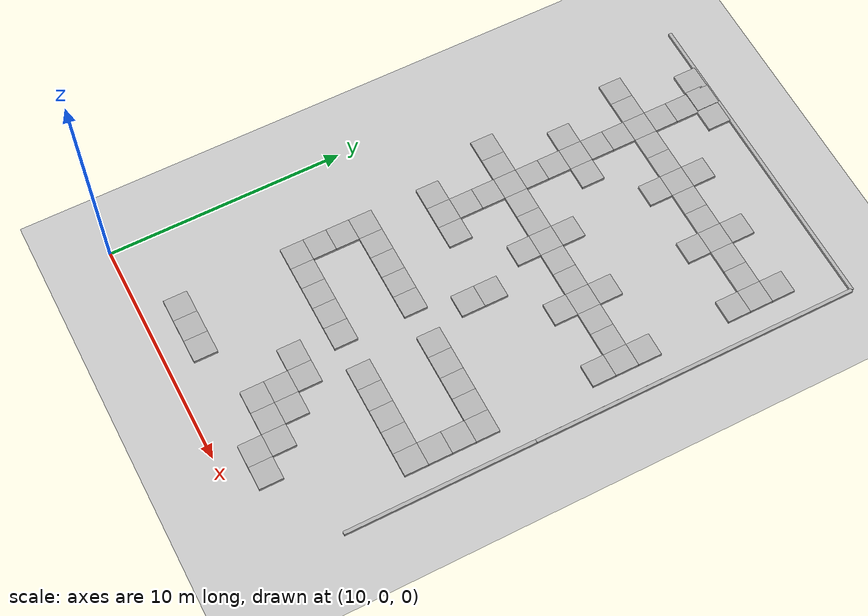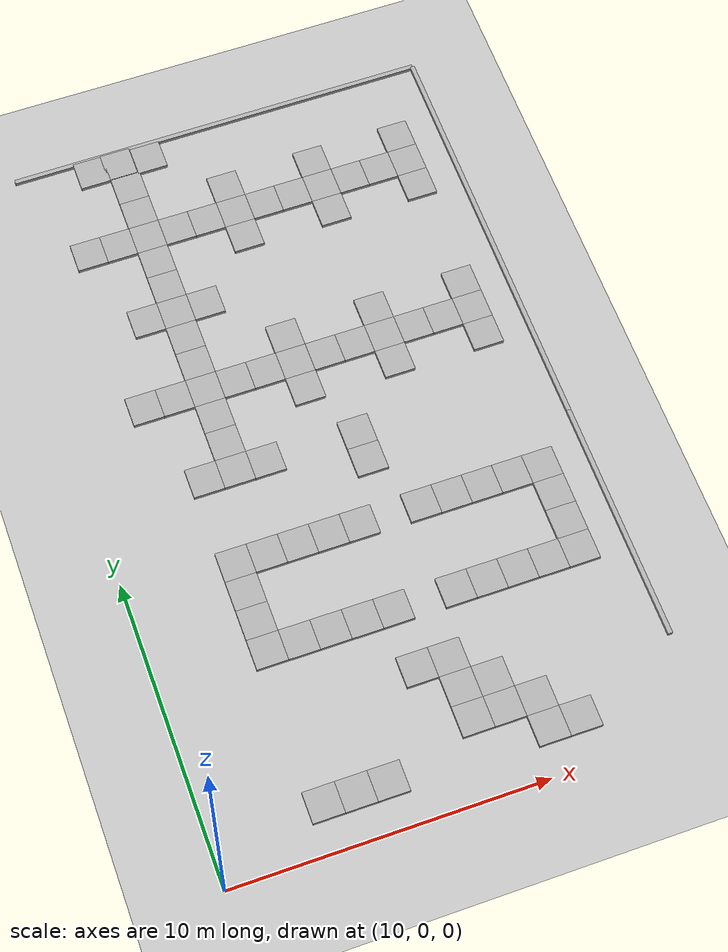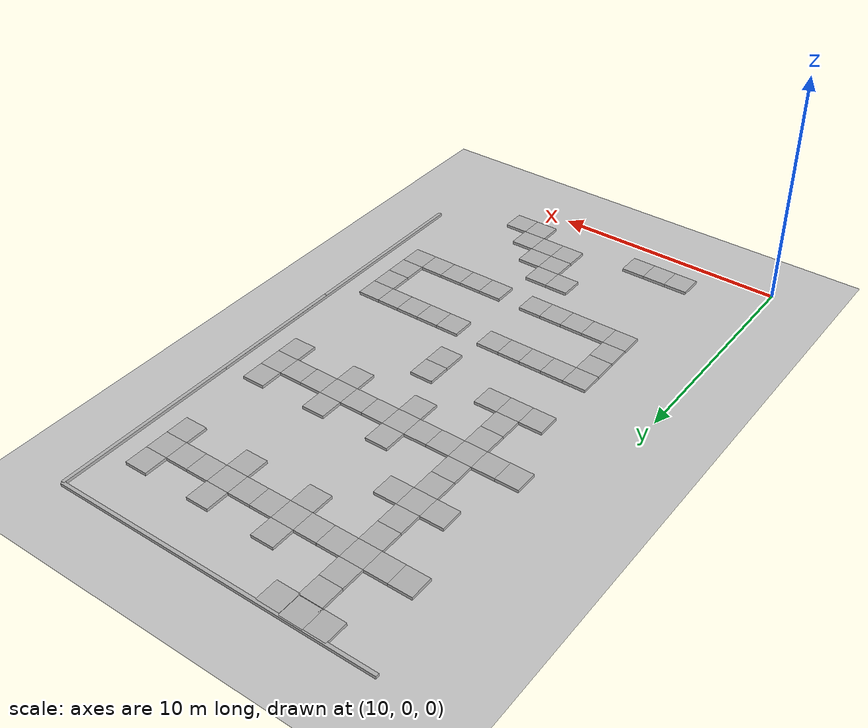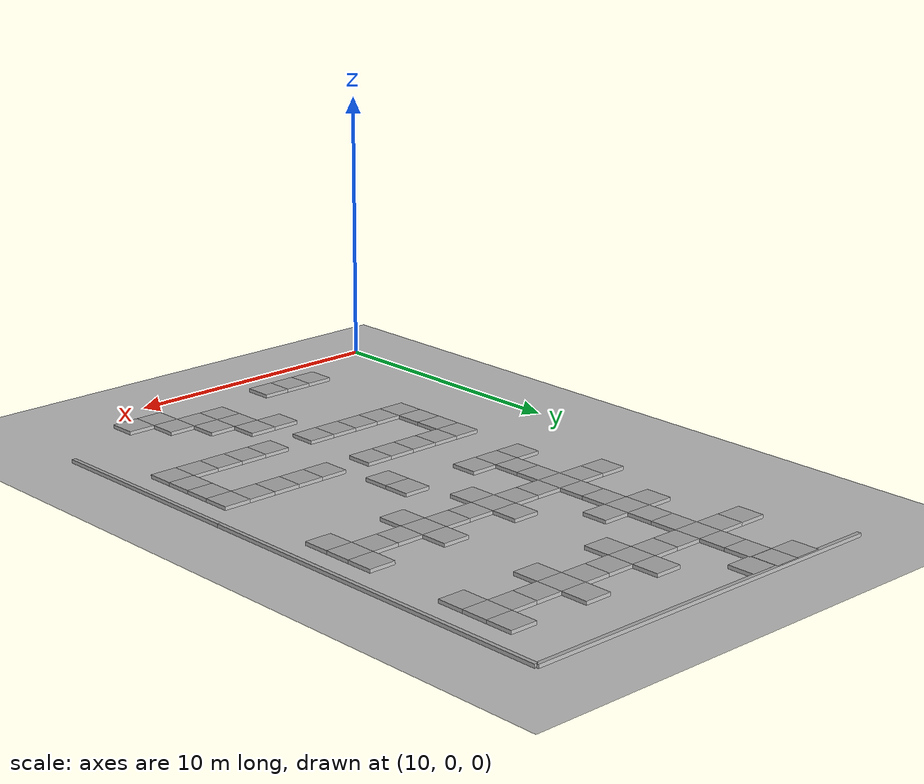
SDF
<sdf version="1.7">
 <world name="default">
  <model name="ground_plane">
   <static>1</static>
   <link name="link">
    <collision name="collision">
     <geometry><plane><normal>0 0 1</normal><size>100 100</size></plane></geometry>
     <surface>
      <contact><collide_bitmask>65535</collide_bitmask></contact>
      <friction><ode><mu>100</mu><mu2>50</mu2></ode></friction>
     </surface>
    </collision>
    <visual name="visual">
     <cast_shadows>0</cast_shadows>
     <geometry><plane><normal>0 0 1</normal><size>100 100</size></plane></geometry>
     <material>
      <script><uri>file://media/materials/scripts/gazebo.material</uri><name>Gazebo/Grey</name></script>
     </material>
    </visual>
   </link>
  </model>
  <model name="concrete_barrier_14m_3">
   <static>1</static>
   <link name="link">
    <collision name="concrete_barrier_14m_01">
     <pose>-0 0 0.3 0 -0 0</pose>
     <geometry><box><size>14 0.15 0.6</size></box></geometry>
    </collision>
    <visual name="concrete_barrier_14m_visual">
     <geometry><mesh><uri>model://concrete_barrier_14m/meshes/concrete_barrier_14m.dae</uri></mesh></geometry>
    </visual>
   </link>
   <pose>25 10 -3.1e-05 0 -0 0</pose>
  </model>
  <model name="concrete_barrier_14m_4">
   <static>1</static>
   <link name="link">
    <collision name="concrete_barrier_14m_01">
     <pose>-0 0 0.3 0 -0 0</pose>
     <geometry><box><size>14 0.15 0.6</size></box></geometry>
    </collision>
    <visual name="concrete_barrier_14m_visual">
     <geometry><mesh><uri>model://concrete_barrier_14m/meshes/concrete_barrier_14m.dae</uri></mesh></geometry>
    </visual>
   </link>
   <pose>18 25 -3.1e-05 0 0 -1.56953</pose>
  </model>
  <model name="concrete_cube_1m_113">
   <static>1</static>
   <link name="link">
    <collision name="concrete_cube_1m">
     <pose>-0 0 0.3 0 -0 0</pose>
     <geometry><box><size>1 1 0.6</size></box></geometry>
    </collision>
    <visual name="concrete_cube_1m_visual">
     <geometry><mesh><uri>model://concrete_cube_1m/meshes/concrete_cube_1m.dae</uri></mesh></geometry>
    </visual>
   </link>
   <pose>14.5 14.5 0 0 -0 0</pose>
  </model>
  <model name="concrete_cube_1m_114">
   <static>1</static>
   <link name="link">
    <collision name="concrete_cube_1m">
     <pose>-0 0 0.3 0 -0 0</pose>
     <geometry><box><size>1 1 0.6</size></box></geometry>
    </collision>
    <visual name="concrete_cube_1m_visual">
     <geometry><mesh><uri>model://concrete_cube_1m/meshes/concrete_cube_1m.dae</uri></mesh></geometry>
    </visual>
   </link>
   <pose>14.5 13.5 0 0 -0 0</pose>
  </model>
  <model name="concrete_cube_1m_147">
   <static>1</static>
   <link name="link">
    <collision name="concrete_cube_1m">
     <pose>-0 0 0.3 0 -0 0</pose>
     <geometry><box><size>1 1 0.6</size></box></geometry>
    </collision>
    <visual name="concrete_cube_1m_visual">
     <geometry><mesh><uri>model://concrete_cube_1m/meshes/concrete_cube_1m.dae</uri></mesh></geometry>
    </visual>
   </link>
   <pose>13.5 6.5 0 0 -0 0</pose>
  </model>
  <model name="concrete_cube_1m_148">
   <static>1</static>
   <link name="link">
    <collision name="concrete_cube_1m">
     <pose>-0 0 0.3 0 -0 0</pose>
     <geometry><box><size>1 1 0.6</size></box></geometry>
    </collision>
    <visual name="concrete_cube_1m_visual">
     <geometry><mesh><uri>model://concrete_cube_1m/meshes/concrete_cube_1m.dae</uri></mesh></geometry>
    </visual>
   </link>
   <pose>13.5 7.5 0 0 -0 0</pose>
  </model>
  <model name="concrete_cube_1m_149">
   <static>1</static>
   <link name="link">
    <collision name="concrete_cube_1m">
     <pose>-0 0 0.3 0 -0 0</pose>
     <geometry><box><size>1 1 0.6</size></box></geometry>
    </collision>
    <visual name="concrete_cube_1m_visual">
     <geometry><mesh><uri>model://concrete_cube_1m/meshes/concrete_cube_1m.dae</uri></mesh></geometry>
    </visual>
   </link>
   <pose>13.5 8.5 0 0 -0 0</pose>
  </model>
  <model name="concrete_cube_1m_150">
   <static>1</static>
   <link name="link">
    <collision name="concrete_cube_1m">
     <pose>-0 0 0.3 0 -0 0</pose>
     <geometry><box><size>1 1 0.6</size></box></geometry>
    </collision>
    <visual name="concrete_cube_1m_visual">
     <geometry><mesh><uri>model://concrete_cube_1m/meshes/concrete_cube_1m.dae</uri></mesh></geometry>
    </visual>
   </link>
   <pose>13.5 9.5 0 0 -0 0</pose>
  </model>
  <model name="concrete_cube_1m_248">
   <static>1</static>
   <link name="link">
    <collision name="concrete_cube_1m">
     <pose>-0 0 0.3 0 -0 0</pose>
     <geometry><box><size>1 1 0.6</size></box></geometry>
    </collision>
    <visual name="concrete_cube_1m_visual">
     <geometry><mesh><uri>model://concrete_cube_1m/meshes/concrete_cube_1m.dae</uri></mesh></geometry>
    </visual>
   </link>
   <pose>14.5 15.5 0 0 -0 0</pose>
  </model>
  <model name="concrete_cube_1m_249">
   <static>1</static>
   <link name="link">
    <collision name="concrete_cube_1m">
     <pose>-0 0 0.3 0 -0 0</pose>
     <geometry><box><size>1 1 0.6</size></box></geometry>
    </collision>
    <visual name="concrete_cube_1m_visual">
     <geometry><mesh><uri>model://concrete_cube_1m/meshes/concrete_cube_1m.dae</uri></mesh></geometry>
    </visual>
   </link>
   <pose>14.5 16.5 0 0 -0 0</pose>
  </model>
  <model name="concrete_cube_1m_254">
   <static>1</static>
   <link name="link">
    <collision name="concrete_cube_1m">
     <pose>-0 0 0.3 0 -0 0</pose>
     <geometry><box><size>1 1 0.6</size></box></geometry>
    </collision>
    <visual name="concrete_cube_1m_visual">
     <geometry><mesh><uri>model://concrete_cube_1m/meshes/concrete_cube_1m.dae</uri></mesh></geometry>
    </visual>
   </link>
   <pose>14.5 9.5 0 0 -0 0</pose>
  </model>
  <model name="concrete_cube_1m_255">
   <static>1</static>
   <link name="link">
    <collision name="concrete_cube_1m">
     <pose>-0 0 0.3 0 -0 0</pose>
     <geometry><box><size>1 1 0.6</size></box></geometry>
    </collision>
    <visual name="concrete_cube_1m_visual">
     <geometry><mesh><uri>model://concrete_cube_1m/meshes/concrete_cube_1m.dae</uri></mesh></geometry>
    </visual>
   </link>
   <pose>14.5 6.5 0 0 -0 0</pose>
  </model>
  <model name="concrete_cube_1m_256">
   <static>1</static>
   <link name="link">
    <collision name="concrete_cube_1m">
     <pose>-0 0 0.3 0 -0 0</pose>
     <geometry><box><size>1 1 0.6</size></box></geometry>
    </collision>
    <visual name="concrete_cube_1m_visual">
     <geometry><mesh><uri>model://concrete_cube_1m/meshes/concrete_cube_1m.dae</uri></mesh></geometry>
    </visual>
   </link>
   <pose>15.5 6.5 0 0 -0 0</pose>
  </model>
  <model name="concrete_cube_1m_257">
   <static>1</static>
   <link name="link">
    <collision name="concrete_cube_1m">
     <pose>-0 0 0.3 0 -0 0</pose>
     <geometry><box><size>1 1 0.6</size></box></geometry>
    </collision>
    <visual name="concrete_cube_1m_visual">
     <geometry><mesh><uri>model://concrete_cube_1m/meshes/concrete_cube_1m.dae</uri></mesh></geometry>
    </visual>
   </link>
   <pose>16.5 6.5 0 0 -0 0</pose>
  </model>
  <model name="concrete_cube_1m_258">
   <static>1</static>
   <link name="link">
    <collision name="concrete_cube_1m">
     <pose>-0 0 0.3 0 -0 0</pose>
     <geometry><box><size>1 1 0.6</size></box></geometry>
    </collision>
    <visual name="concrete_cube_1m_visual">
     <geometry><mesh><uri>model://concrete_cube_1m/meshes/concrete_cube_1m.dae</uri></mesh></geometry>
    </visual>
   </link>
   <pose>17.5 6.5 0 0 -0 0</pose>
  </model>
  <model name="concrete_cube_1m_259">
   <static>1</static>
   <link name="link">
    <collision name="concrete_cube_1m">
     <pose>-0 0 0.3 0 -0 0</pose>
     <geometry><box><size>1 1 0.6</size></box></geometry>
    </collision>
    <visual name="concrete_cube_1m_visual">
     <geometry><mesh><uri>model://concrete_cube_1m/meshes/concrete_cube_1m.dae</uri></mesh></geometry>
    </visual>
   </link>
   <pose>15.5 9.5 0 0 -0 0</pose>
  </model>
  <model name="concrete_cube_1m_260">
   <static>1</static>
   <link name="link">
    <collision name="concrete_cube_1m">
     <pose>-0 0 0.3 0 -0 0</pose>
     <geometry><box><size>1 1 0.6</size></box></geometry>
    </collision>
    <visual name="concrete_cube_1m_visual">
     <geometry><mesh><uri>model://concrete_cube_1m/meshes/concrete_cube_1m.dae</uri></mesh></geometry>
    </visual>
   </link>
   <pose>16.5 9.5 0 0 -0 0</pose>
  </model>
  <model name="concrete_cube_1m_261">
   <static>1</static>
   <link name="link">
    <collision name="concrete_cube_1m">
     <pose>-0 0 0.3 0 -0 0</pose>
     <geometry><box><size>1 1 0.6</size></box></geometry>
    </collision>
    <visual name="concrete_cube_1m_visual">
     <geometry><mesh><uri>model://concrete_cube_1m/meshes/concrete_cube_1m.dae</uri></mesh></geometry>
    </visual>
   </link>
   <pose>17.5 9.5 0 0 -0 0</pose>
  </model>
  <model name="concrete_cube_1m_262">
   <static>1</static>
   <link name="link">
    <collision name="concrete_cube_1m">
     <pose>-0 0 0.3 0 -0 0</pose>
     <geometry><box><size>1 1 0.6</size></box></geometry>
    </collision>
    <visual name="concrete_cube_1m_visual">
     <geometry><mesh><uri>model://concrete_cube_1m/meshes/concrete_cube_1m.dae</uri></mesh></geometry>
    </visual>
   </link>
   <pose>13.5 1.5 0 0 -0 0</pose>
  </model>
  <model name="concrete_cube_1m_263">
   <static>1</static>
   <link name="link">
    <collision name="concrete_cube_1m">
     <pose>-0 0 0.3 0 -0 0</pose>
     <geometry><box><size>1 1 0.6</size></box></geometry>
    </collision>
    <visual name="concrete_cube_1m_visual">
     <geometry><mesh><uri>model://concrete_cube_1m/meshes/concrete_cube_1m.dae</uri></mesh></geometry>
    </visual>
   </link>
   <pose>14.5 1.5 0 0 -0 0</pose>
  </model>
  <model name="concrete_cube_1m_264">
   <static>1</static>
   <link name="link">
    <collision name="concrete_cube_1m">
     <pose>-0 0 0.3 0 -0 0</pose>
     <geometry><box><size>1 1 0.6</size></box></geometry>
    </collision>
    <visual name="concrete_cube_1m_visual">
     <geometry><mesh><uri>model://concrete_cube_1m/meshes/concrete_cube_1m.dae</uri></mesh></geometry>
    </visual>
   </link>
   <pose>15.5 1.5 0 0 -0 0</pose>
  </model>
  <model name="concrete_cube_1m_268">
   <static>1</static>
   <link name="link">
    <collision name="concrete_cube_1m">
     <pose>-0 0 0.3 0 -0 0</pose>
     <geometry><box><size>1 1 0.6</size></box></geometry>
    </collision>
    <visual name="concrete_cube_1m_visual">
     <geometry><mesh><uri>model://concrete_cube_1m/meshes/concrete_cube_1m.dae</uri></mesh></geometry>
    </visual>
   </link>
   <pose>14.5 17.5 0 0 -0 0</pose>
  </model>
  <model name="concrete_cube_1m_269">
   <static>1</static>
   <link name="link">
    <collision name="concrete_cube_1m">
     <pose>-0 0 0.3 0 -0 0</pose>
     <geometry><box><size>1 1 0.6</size></box></geometry>
    </collision>
    <visual name="concrete_cube_1m_visual">
     <geometry><mesh><uri>model://concrete_cube_1m/meshes/concrete_cube_1m.dae</uri></mesh></geometry>
    </visual>
   </link>
   <pose>15.5 15.5 0 0 -0 0</pose>
  </model>
  <model name="concrete_cube_1m_270">
   <static>1</static>
   <link name="link">
    <collision name="concrete_cube_1m">
     <pose>-0 0 0.3 0 -0 0</pose>
     <geometry><box><size>1 1 0.6</size></box></geometry>
    </collision>
    <visual name="concrete_cube_1m_visual">
     <geometry><mesh><uri>model://concrete_cube_1m/meshes/concrete_cube_1m.dae</uri></mesh></geometry>
    </visual>
   </link>
   <pose>16.5 15.5 0 0 -0 0</pose>
  </model>
  <model name="concrete_cube_1m_271">
   <static>1</static>
   <link name="link">
    <collision name="concrete_cube_1m">
     <pose>-0 0 0.3 0 -0 0</pose>
     <geometry><box><size>1 1 0.6</size></box></geometry>
    </collision>
    <visual name="concrete_cube_1m_visual">
     <geometry><mesh><uri>model://concrete_cube_1m/meshes/concrete_cube_1m.dae</uri></mesh></geometry>
    </visual>
   </link>
   <pose>17.5 15.5 0 0 -0 0</pose>
  </model>
  <model name="concrete_cube_1m_272">
   <static>1</static>
   <link name="link">
    <collision name="concrete_cube_1m">
     <pose>-0 0 0.3 0 -0 0</pose>
     <geometry><box><size>1 1 0.6</size></box></geometry>
    </collision>
    <visual name="concrete_cube_1m_visual">
     <geometry><mesh><uri>model://concrete_cube_1m/meshes/concrete_cube_1m.dae</uri></mesh></geometry>
    </visual>
   </link>
   <pose>13.5 15.5 0 0 -0 0</pose>
  </model>
  <model name="concrete_cube_1m_273">
   <static>1</static>
   <link name="link">
    <collision name="concrete_cube_1m">
     <pose>-0 0 0.3 0 -0 0</pose>
     <geometry><box><size>1 1 0.6</size></box></geometry>
    </collision>
    <visual name="concrete_cube_1m_visual">
     <geometry><mesh><uri>model://concrete_cube_1m/meshes/concrete_cube_1m.dae</uri></mesh></geometry>
    </visual>
   </link>
   <pose>12.5 15.5 0 0 -0 0</pose>
  </model>
  <model name="concrete_cube_1m_275">
   <static>1</static>
   <link name="link">
    <collision name="concrete_cube_1m">
     <pose>-0 0 0.3 0 -0 0</pose>
     <geometry><box><size>1 1 0.6</size></box></geometry>
    </collision>
    <visual name="concrete_cube_1m_visual">
     <geometry><mesh><uri>model://concrete_cube_1m/meshes/concrete_cube_1m.dae</uri></mesh></geometry>
    </visual>
   </link>
   <pose>14.5 12.5 0 0 -0 0</pose>
  </model>
  <model name="concrete_cube_1m_276">
   <static>1</static>
   <link name="link">
    <collision name="concrete_cube_1m">
     <pose>-0 0 0.3 0 -0 0</pose>
     <geometry><box><size>1 1 0.6</size></box></geometry>
    </collision>
    <visual name="concrete_cube_1m_visual">
     <geometry><mesh><uri>model://concrete_cube_1m/meshes/concrete_cube_1m.dae</uri></mesh></geometry>
    </visual>
   </link>
   <pose>14.5 18.5 0 0 -0 0</pose>
  </model>
  <model name="concrete_cube_1m_277">
   <static>1</static>
   <link name="link">
    <collision name="concrete_cube_1m">
     <pose>-0 0 0.3 0 -0 0</pose>
     <geometry><box><size>1 1 0.6</size></box></geometry>
    </collision>
    <visual name="concrete_cube_1m_visual">
     <geometry><mesh><uri>model://concrete_cube_1m/meshes/concrete_cube_1m.dae</uri></mesh></geometry>
    </visual>
   </link>
   <pose>17.5 14.5 0 0 -0 0</pose>
  </model>
  <model name="concrete_cube_1m_278">
   <static>1</static>
   <link name="link">
    <collision name="concrete_cube_1m">
     <pose>-0 0 0.3 0 -0 0</pose>
     <geometry><box><size>1 1 0.6</size></box></geometry>
    </collision>
    <visual name="concrete_cube_1m_visual">
     <geometry><mesh><uri>model://concrete_cube_1m/meshes/concrete_cube_1m.dae</uri></mesh></geometry>
    </visual>
   </link>
   <pose>17.5 16.5 0 0 -0 0</pose>
  </model>
  <model name="concrete_cube_1m_279">
   <static>1</static>
   <link name="link">
    <collision name="concrete_cube_1m">
     <pose>-0 0 0.3 0 -0 0</pose>
     <geometry><box><size>1 1 0.6</size></box></geometry>
    </collision>
    <visual name="concrete_cube_1m_visual">
     <geometry><mesh><uri>model://concrete_cube_1m/meshes/concrete_cube_1m.dae</uri></mesh></geometry>
    </visual>
   </link>
   <pose>13.5 12.5 0 0 -0 0</pose>
  </model>
  <model name="concrete_cube_1m_280">
   <static>1</static>
   <link name="link">
    <collision name="concrete_cube_1m">
     <pose>-0 0 0.3 0 -0 0</pose>
     <geometry><box><size>1 1 0.6</size></box></geometry>
    </collision>
    <visual name="concrete_cube_1m_visual">
     <geometry><mesh><uri>model://concrete_cube_1m/meshes/concrete_cube_1m.dae</uri></mesh></geometry>
    </visual>
   </link>
   <pose>15.5 12.5 0 0 -0 0</pose>
  </model>
  <model name="concrete_cube_1m_283">
   <static>1</static>
   <link name="link">
    <collision name="concrete_cube_1m">
     <pose>-0 0 0.3 0 -0 0</pose>
     <geometry><box><size>1 1 0.6</size></box></geometry>
    </collision>
    <visual name="concrete_cube_1m_visual">
     <geometry><mesh><uri>model://concrete_cube_1m/meshes/concrete_cube_1m.dae</uri></mesh></geometry>
    </visual>
   </link>
   <pose>13.5 18.5 0 0 -0 0</pose>
  </model>
  <model name="concrete_cube_1m_284">
   <static>1</static>
   <link name="link">
    <collision name="concrete_cube_1m">
     <pose>-0 0 0.3 0 -0 0</pose>
     <geometry><box><size>1 1 0.6</size></box></geometry>
    </collision>
    <visual name="concrete_cube_1m_visual">
     <geometry><mesh><uri>model://concrete_cube_1m/meshes/concrete_cube_1m.dae</uri></mesh></geometry>
    </visual>
   </link>
   <pose>15.5 18.5 0 0 -0 0</pose>
  </model>
  <model name="concrete_cube_1m_301">
   <static>1</static>
   <link name="link">
    <collision name="concrete_cube_1m">
     <pose>-0 0 0.3 0 -0 0</pose>
     <geometry><box><size>1 1 0.6</size></box></geometry>
    </collision>
    <visual name="concrete_cube_1m_visual">
     <geometry><mesh><uri>model://concrete_cube_1m/meshes/concrete_cube_1m.dae</uri></mesh></geometry>
    </visual>
   </link>
   <pose>18.5 2.5 0 0 -0 0</pose>
  </model>
  <model name="concrete_cube_1m_302">
   <static>1</static>
   <link name="link">
    <collision name="concrete_cube_1m">
     <pose>-0 0 0.3 0 -0 0</pose>
     <geometry><box><size>1 1 0.6</size></box></geometry>
    </collision>
    <visual name="concrete_cube_1m_visual">
     <geometry><mesh><uri>model://concrete_cube_1m/meshes/concrete_cube_1m.dae</uri></mesh></geometry>
    </visual>
   </link>
   <pose>18.5 3.5 0 0 -0 0</pose>
  </model>
  <model name="concrete_cube_1m_303">
   <static>1</static>
   <link name="link">
    <collision name="concrete_cube_1m">
     <pose>-0 0 0.3 0 -0 0</pose>
     <geometry><box><size>1 1 0.6</size></box></geometry>
    </collision>
    <visual name="concrete_cube_1m_visual">
     <geometry><mesh><uri>model://concrete_cube_1m/meshes/concrete_cube_1m.dae</uri></mesh></geometry>
    </visual>
   </link>
   <pose>18.5 4.5 0 0 -0 0</pose>
  </model>
  <model name="concrete_cube_1m_304">
   <static>1</static>
   <link name="link">
    <collision name="concrete_cube_1m">
     <pose>-0 0 0.3 0 -0 0</pose>
     <geometry><box><size>1 1 0.6</size></box></geometry>
    </collision>
    <visual name="concrete_cube_1m_visual">
     <geometry><mesh><uri>model://concrete_cube_1m/meshes/concrete_cube_1m.dae</uri></mesh></geometry>
    </visual>
   </link>
   <pose>18.5 11.5 0 0 -0 0</pose>
  </model>
  <model name="concrete_cube_1m_305">
   <static>1</static>
   <link name="link">
    <collision name="concrete_cube_1m">
     <pose>-0 0 0.3 0 -0 0</pose>
     <geometry><box><size>1 1 0.6</size></box></geometry>
    </collision>
    <visual name="concrete_cube_1m_visual">
     <geometry><mesh><uri>model://concrete_cube_1m/meshes/concrete_cube_1m.dae</uri></mesh></geometry>
    </visual>
   </link>
   <pose>18.5 12.5 0 0 -0 0</pose>
  </model>
  <model name="concrete_barrier_14m">
   <static>1</static>
   <link name="link">
    <collision name="concrete_barrier_14m_01">
     <pose>-0 0 0.3 0 -0 0</pose>
     <geometry><box><size>14 0.15 0.6</size></box></geometry>
    </collision>
    <visual name="concrete_barrier_14m_visual">
     <geometry><mesh><uri>model://concrete_barrier_14m/meshes/concrete_barrier_14m.dae</uri></mesh></geometry>
    </visual>
   </link>
   <pose>25 18 0 0 -0 0</pose>
  </model>
  <model name="concrete_cube_1m_626">
   <static>1</static>
   <link name="link">
    <collision name="concrete_cube_1m">
     <pose>-0 0 0.3 0 -0 0</pose>
     <geometry><box><size>1 1 0.6</size></box></geometry>
    </collision>
    <visual name="concrete_cube_1m_visual">
     <geometry><mesh><uri>model://concrete_cube_1m/meshes/concrete_cube_1m.dae</uri></mesh></geometry>
    </visual>
   </link>
   <pose>14.5 19.5 0 0 -0 0</pose>
  </model>
  <model name="concrete_cube_1m_627">
   <static>1</static>
   <link name="link">
    <collision name="concrete_cube_1m">
     <pose>-0 0 0.3 0 -0 0</pose>
     <geometry><box><size>1 1 0.6</size></box></geometry>
    </collision>
    <visual name="concrete_cube_1m_visual">
     <geometry><mesh><uri>model://concrete_cube_1m/meshes/concrete_cube_1m.dae</uri></mesh></geometry>
    </visual>
   </link>
   <pose>14.5 20.5 0 0 -0 0</pose>
  </model>
  <model name="concrete_cube_1m_628">
   <static>1</static>
   <link name="link">
    <collision name="concrete_cube_1m">
     <pose>-0 0 0.3 0 -0 0</pose>
     <geometry><box><size>1 1 0.6</size></box></geometry>
    </collision>
    <visual name="concrete_cube_1m_visual">
     <geometry><mesh><uri>model://concrete_cube_1m/meshes/concrete_cube_1m.dae</uri></mesh></geometry>
    </visual>
   </link>
   <pose>14.5 21.5 0 0 -0 0</pose>
  </model>
  <model name="concrete_cube_1m_629">
   <static>1</static>
   <link name="link">
    <collision name="concrete_cube_1m">
     <pose>-0 0 0.3 0 -0 0</pose>
     <geometry><box><size>1 1 0.6</size></box></geometry>
    </collision>
    <visual name="concrete_cube_1m_visual">
     <geometry><mesh><uri>model://concrete_cube_1m/meshes/concrete_cube_1m.dae</uri></mesh></geometry>
    </visual>
   </link>
   <pose>15.5 21.5 0 0 -0 0</pose>
  </model>
  <model name="concrete_cube_1m_630">
   <static>1</static>
   <link name="link">
    <collision name="concrete_cube_1m">
     <pose>-0 0 0.3 0 -0 0</pose>
     <geometry><box><size>1 1 0.6</size></box></geometry>
    </collision>
    <visual name="concrete_cube_1m_visual">
     <geometry><mesh><uri>model://concrete_cube_1m/meshes/concrete_cube_1m.dae</uri></mesh></geometry>
    </visual>
   </link>
   <pose>16.5 21.5 0 0 -0 0</pose>
  </model>
  <model name="concrete_cube_1m_631">
   <static>1</static>
   <link name="link">
    <collision name="concrete_cube_1m">
     <pose>-0 0 0.3 0 -0 0</pose>
     <geometry><box><size>1 1 0.6</size></box></geometry>
    </collision>
    <visual name="concrete_cube_1m_visual">
     <geometry><mesh><uri>model://concrete_cube_1m/meshes/concrete_cube_1m.dae</uri></mesh></geometry>
    </visual>
   </link>
   <pose>17.5 21.5 0 0 -0 0</pose>
  </model>
  <model name="concrete_cube_1m_632">
   <static>1</static>
   <link name="link">
    <collision name="concrete_cube_1m">
     <pose>-0 0 0.3 0 -0 0</pose>
     <geometry><box><size>1 1 0.6</size></box></geometry>
    </collision>
    <visual name="concrete_cube_1m_visual">
     <geometry><mesh><uri>model://concrete_cube_1m/meshes/concrete_cube_1m.dae</uri></mesh></geometry>
    </visual>
   </link>
   <pose>17.5 20.5 0 0 -0 0</pose>
  </model>
  <model name="concrete_cube_1m_633">
   <static>1</static>
   <link name="link">
    <collision name="concrete_cube_1m">
     <pose>-0 0 0.3 0 -0 0</pose>
     <geometry><box><size>1 1 0.6</size></box></geometry>
    </collision>
    <visual name="concrete_cube_1m_visual">
     <geometry><mesh><uri>model://concrete_cube_1m/meshes/concrete_cube_1m.dae</uri></mesh></geometry>
    </visual>
   </link>
   <pose>17.5 22.5 0 0 -0 0</pose>
  </model>
  <model name="concrete_cube_1m_634">
   <static>1</static>
   <link name="link">
    <collision name="concrete_cube_1m">
     <pose>-0 0 0.3 0 -0 0</pose>
     <geometry><box><size>1 1 0.6</size></box></geometry>
    </collision>
    <visual name="concrete_cube_1m_visual">
     <geometry><mesh><uri>model://concrete_cube_1m/meshes/concrete_cube_1m.dae</uri></mesh></geometry>
    </visual>
   </link>
   <pose>13.5 21.5 0 0 -0 0</pose>
  </model>
  <model name="concrete_cube_1m_635">
   <static>1</static>
   <link name="link">
    <collision name="concrete_cube_1m">
     <pose>-0 0 0.3 0 -0 0</pose>
     <geometry><box><size>1 1 0.6</size></box></geometry>
    </collision>
    <visual name="concrete_cube_1m_visual">
     <geometry><mesh><uri>model://concrete_cube_1m/meshes/concrete_cube_1m.dae</uri></mesh></geometry>
    </visual>
   </link>
   <pose>12.5 21.5 0 0 -0 0</pose>
  </model>
  <model name="concrete_cube_1m_639">
   <static>1</static>
   <link name="link">
    <collision name="concrete_cube_1m">
     <pose>-0 0 0.3 0 -0 0</pose>
     <geometry><box><size>1 1 0.6</size></box></geometry>
    </collision>
    <visual name="concrete_cube_1m_visual">
     <geometry><mesh><uri>model://concrete_cube_1m/meshes/concrete_cube_1m.dae</uri></mesh></geometry>
    </visual>
   </link>
   <pose>14.5 22.5 0 0 -0 0</pose>
  </model>
  <model name="concrete_cube_1m_640">
   <static>1</static>
   <link name="link">
    <collision name="concrete_cube_1m">
     <pose>-0 0 0.3 0 -0 0</pose>
     <geometry><box><size>1 1 0.6</size></box></geometry>
    </collision>
    <visual name="concrete_cube_1m_visual">
     <geometry><mesh><uri>model://concrete_cube_1m/meshes/concrete_cube_1m.dae</uri></mesh></geometry>
    </visual>
   </link>
   <pose>14.5 23.5 0 0 -0 0</pose>
  </model>
  <model name="concrete_cube_1m_641">
   <static>1</static>
   <link name="link">
    <collision name="concrete_cube_1m">
     <pose>-0 0 0.3 0 -0 0</pose>
     <geometry><box><size>1 1 0.6</size></box></geometry>
    </collision>
    <visual name="concrete_cube_1m_visual">
     <geometry><mesh><uri>model://concrete_cube_1m/meshes/concrete_cube_1m.dae</uri></mesh></geometry>
    </visual>
   </link>
   <pose>15.4466 24.4523 0 0 -0 0</pose>
  </model>
  <model name="concrete_cube_1m_642">
   <static>1</static>
   <link name="link">
    <collision name="concrete_cube_1m">
     <pose>-0 0 0.3 0 -0 0</pose>
     <geometry><box><size>1 1 0.6</size></box></geometry>
    </collision>
    <visual name="concrete_cube_1m_visual">
     <geometry><mesh><uri>model://concrete_cube_1m/meshes/concrete_cube_1m.dae</uri></mesh></geometry>
    </visual>
   </link>
   <pose>14.4321 24.5191 0 0 -0 0</pose>
  </model>
  <model name="concrete_cube_1m_643">
   <static>1</static>
   <link name="link">
    <collision name="concrete_cube_1m">
     <pose>-0 0 0.3 0 -0 0</pose>
     <geometry><box><size>1 1 0.6</size></box></geometry>
    </collision>
    <visual name="concrete_cube_1m_visual">
     <geometry><mesh><uri>model://concrete_cube_1m/meshes/concrete_cube_1m.dae</uri></mesh></geometry>
    </visual>
   </link>
   <pose>13.5 24.5 0 0 -0 0</pose>
  </model>
  <model name="concrete_cube_1m_644">
   <static>1</static>
   <link name="link">
    <collision name="concrete_cube_1m">
     <pose>-0 0 0.3 0 -0 0</pose>
     <geometry><box><size>1 1 0.6</size></box></geometry>
    </collision>
    <visual name="concrete_cube_1m_visual">
     <geometry><mesh><uri>model://concrete_cube_1m/meshes/concrete_cube_1m.dae</uri></mesh></geometry>
    </visual>
   </link>
   <pose>18.5 21.5 0 0 -0 0</pose>
  </model>
  <model name="concrete_cube_1m_645">
   <static>1</static>
   <link name="link">
    <collision name="concrete_cube_1m">
     <pose>-0 0 0.3 0 -0 0</pose>
     <geometry><box><size>1 1 0.6</size></box></geometry>
    </collision>
    <visual name="concrete_cube_1m_visual">
     <geometry><mesh><uri>model://concrete_cube_1m/meshes/concrete_cube_1m.dae</uri></mesh></geometry>
    </visual>
   </link>
   <pose>19.5 21.5 0 0 -0 0</pose>
  </model>
  <model name="concrete_cube_1m_646">
   <static>1</static>
   <link name="link">
    <collision name="concrete_cube_1m">
     <pose>-0 0 0.3 0 -0 0</pose>
     <geometry><box><size>1 1 0.6</size></box></geometry>
    </collision>
    <visual name="concrete_cube_1m_visual">
     <geometry><mesh><uri>model://concrete_cube_1m/meshes/concrete_cube_1m.dae</uri></mesh></geometry>
    </visual>
   </link>
   <pose>18.5 15.5 0 0 -0 0</pose>
  </model>
  <model name="concrete_cube_1m_647">
   <static>1</static>
   <link name="link">
    <collision name="concrete_cube_1m">
     <pose>-0 0 0.3 0 -0 0</pose>
     <geometry><box><size>1 1 0.6</size></box></geometry>
    </collision>
    <visual name="concrete_cube_1m_visual">
     <geometry><mesh><uri>model://concrete_cube_1m/meshes/concrete_cube_1m.dae</uri></mesh></geometry>
    </visual>
   </link>
   <pose>19.5 15.5 0 0 -0 0</pose>
  </model>
  <model name="concrete_cube_1m_648">
   <static>1</static>
   <link name="link">
    <collision name="concrete_cube_1m">
     <pose>-0 0 0.3 0 -0 0</pose>
     <geometry><box><size>1 1 0.6</size></box></geometry>
    </collision>
    <visual name="concrete_cube_1m_visual">
     <geometry><mesh><uri>model://concrete_cube_1m/meshes/concrete_cube_1m.dae</uri></mesh></geometry>
    </visual>
   </link>
   <pose>20.5 15.5 0 0 -0 0</pose>
  </model>
  <model name="concrete_cube_1m_649">
   <static>1</static>
   <link name="link">
    <collision name="concrete_cube_1m">
     <pose>-0 0 0.3 0 -0 0</pose>
     <geometry><box><size>1 1 0.6</size></box></geometry>
    </collision>
    <visual name="concrete_cube_1m_visual">
     <geometry><mesh><uri>model://concrete_cube_1m/meshes/concrete_cube_1m.dae</uri></mesh></geometry>
    </visual>
   </link>
   <pose>20.5 14.5 0 0 -0 0</pose>
  </model>
  <model name="concrete_cube_1m_650">
   <static>1</static>
   <link name="link">
    <collision name="concrete_cube_1m">
     <pose>-0 0 0.3 0 -0 0</pose>
     <geometry><box><size>1 1 0.6</size></box></geometry>
    </collision>
    <visual name="concrete_cube_1m_visual">
     <geometry><mesh><uri>model://concrete_cube_1m/meshes/concrete_cube_1m.dae</uri></mesh></geometry>
    </visual>
   </link>
   <pose>20.5 16.5 0 0 -0 0</pose>
  </model>
  <model name="concrete_cube_1m_651">
   <static>1</static>
   <link name="link">
    <collision name="concrete_cube_1m">
     <pose>-0 0 0.3 0 -0 0</pose>
     <geometry><box><size>1 1 0.6</size></box></geometry>
    </collision>
    <visual name="concrete_cube_1m_visual">
     <geometry><mesh><uri>model://concrete_cube_1m/meshes/concrete_cube_1m.dae</uri></mesh></geometry>
    </visual>
   </link>
   <pose>20.5 21.5 0 0 -0 0</pose>
  </model>
  <model name="concrete_cube_1m_652">
   <static>1</static>
   <link name="link">
    <collision name="concrete_cube_1m">
     <pose>-0 0 0.3 0 -0 0</pose>
     <geometry><box><size>1 1 0.6</size></box></geometry>
    </collision>
    <visual name="concrete_cube_1m_visual">
     <geometry><mesh><uri>model://concrete_cube_1m/meshes/concrete_cube_1m.dae</uri></mesh></geometry>
    </visual>
   </link>
   <pose>20.5 20.5 0 0 -0 0</pose>
  </model>
  <model name="concrete_cube_1m_653">
   <static>1</static>
   <link name="link">
    <collision name="concrete_cube_1m">
     <pose>-0 0 0.3 0 -0 0</pose>
     <geometry><box><size>1 1 0.6</size></box></geometry>
    </collision>
    <visual name="concrete_cube_1m_visual">
     <geometry><mesh><uri>model://concrete_cube_1m/meshes/concrete_cube_1m.dae</uri></mesh></geometry>
    </visual>
   </link>
   <pose>20.5 22.5 0 0 -0 0</pose>
  </model>
  <model name="concrete_cube_1m_654">
   <static>1</static>
   <link name="link">
    <collision name="concrete_cube_1m">
     <pose>-0 0 0.3 0 -0 0</pose>
     <geometry><box><size>1 1 0.6</size></box></geometry>
    </collision>
    <visual name="concrete_cube_1m_visual">
     <geometry><mesh><uri>model://concrete_cube_1m/meshes/concrete_cube_1m.dae</uri></mesh></geometry>
    </visual>
   </link>
   <pose>21.5 21.5 0 0 -0 0</pose>
  </model>
  <model name="concrete_cube_1m_655">
   <static>1</static>
   <link name="link">
    <collision name="concrete_cube_1m">
     <pose>-0 0 0.3 0 -0 0</pose>
     <geometry><box><size>1 1 0.6</size></box></geometry>
    </collision>
    <visual name="concrete_cube_1m_visual">
     <geometry><mesh><uri>model://concrete_cube_1m/meshes/concrete_cube_1m.dae</uri></mesh></geometry>
    </visual>
   </link>
   <pose>22.5 21.5 0 0 -0 0</pose>
  </model>
  <model name="concrete_cube_1m_656">
   <static>1</static>
   <link name="link">
    <collision name="concrete_cube_1m">
     <pose>-0 0 0.3 0 -0 0</pose>
     <geometry><box><size>1 1 0.6</size></box></geometry>
    </collision>
    <visual name="concrete_cube_1m_visual">
     <geometry><mesh><uri>model://concrete_cube_1m/meshes/concrete_cube_1m.dae</uri></mesh></geometry>
    </visual>
   </link>
   <pose>23.5 21.5 0 0 -0 0</pose>
  </model>
  <model name="concrete_cube_1m_657">
   <static>1</static>
   <link name="link">
    <collision name="concrete_cube_1m">
     <pose>-0 0 0.3 0 -0 0</pose>
     <geometry><box><size>1 1 0.6</size></box></geometry>
    </collision>
    <visual name="concrete_cube_1m_visual">
     <geometry><mesh><uri>model://concrete_cube_1m/meshes/concrete_cube_1m.dae</uri></mesh></geometry>
    </visual>
   </link>
   <pose>23.5 20.5 0 0 -0 0</pose>
  </model>
  <model name="concrete_cube_1m_658">
   <static>1</static>
   <link name="link">
    <collision name="concrete_cube_1m">
     <pose>-0 0 0.3 0 -0 0</pose>
     <geometry><box><size>1 1 0.6</size></box></geometry>
    </collision>
    <visual name="concrete_cube_1m_visual">
     <geometry><mesh><uri>model://concrete_cube_1m/meshes/concrete_cube_1m.dae</uri></mesh></geometry>
    </visual>
   </link>
   <pose>23.5 22.5 0 0 -0 0</pose>
  </model>
  <model name="concrete_cube_1m_659">
   <static>1</static>
   <link name="link">
    <collision name="concrete_cube_1m">
     <pose>-0 0 0.3 0 -0 0</pose>
     <geometry><box><size>1 1 0.6</size></box></geometry>
    </collision>
    <visual name="concrete_cube_1m_visual">
     <geometry><mesh><uri>model://concrete_cube_1m/meshes/concrete_cube_1m.dae</uri></mesh></geometry>
    </visual>
   </link>
   <pose>21.5 15.5 0 0 -0 0</pose>
  </model>
  <model name="concrete_cube_1m_660">
   <static>1</static>
   <link name="link">
    <collision name="concrete_cube_1m">
     <pose>-0 0 0.3 0 -0 0</pose>
     <geometry><box><size>1 1 0.6</size></box></geometry>
    </collision>
    <visual name="concrete_cube_1m_visual">
     <geometry><mesh><uri>model://concrete_cube_1m/meshes/concrete_cube_1m.dae</uri></mesh></geometry>
    </visual>
   </link>
   <pose>22.5 15.5 0 0 -0 0</pose>
  </model>
  <model name="concrete_cube_1m_661">
   <static>1</static>
   <link name="link">
    <collision name="concrete_cube_1m">
     <pose>-0 0 0.3 0 -0 0</pose>
     <geometry><box><size>1 1 0.6</size></box></geometry>
    </collision>
    <visual name="concrete_cube_1m_visual">
     <geometry><mesh><uri>model://concrete_cube_1m/meshes/concrete_cube_1m.dae</uri></mesh></geometry>
    </visual>
   </link>
   <pose>23.5 15.5 0 0 -0 0</pose>
  </model>
  <model name="concrete_cube_1m_662">
   <static>1</static>
   <link name="link">
    <collision name="concrete_cube_1m">
     <pose>-0 0 0.3 0 -0 0</pose>
     <geometry><box><size>1 1 0.6</size></box></geometry>
    </collision>
    <visual name="concrete_cube_1m_visual">
     <geometry><mesh><uri>model://concrete_cube_1m/meshes/concrete_cube_1m.dae</uri></mesh></geometry>
    </visual>
   </link>
   <pose>23.5 14.5 0 0 -0 0</pose>
  </model>
  <model name="concrete_cube_1m_663">
   <static>1</static>
   <link name="link">
    <collision name="concrete_cube_1m">
     <pose>-0 0 0.3 0 -0 0</pose>
     <geometry><box><size>1 1 0.6</size></box></geometry>
    </collision>
    <visual name="concrete_cube_1m_visual">
     <geometry><mesh><uri>model://concrete_cube_1m/meshes/concrete_cube_1m.dae</uri></mesh></geometry>
    </visual>
   </link>
   <pose>23.5 16.5 0 0 -0 0</pose>
  </model>
  <model name="concrete_cube_1m_664">
   <static>1</static>
   <link name="link">
    <collision name="concrete_cube_1m">
     <pose>-0 0 0.3 0 -0 0</pose>
     <geometry><box><size>1 1 0.6</size></box></geometry>
    </collision>
    <visual name="concrete_cube_1m_visual">
     <geometry><mesh><uri>model://concrete_cube_1m/meshes/concrete_cube_1m.dae</uri></mesh></geometry>
    </visual>
   </link>
   <pose>19.5 9.5 0 0 -0 0</pose>
  </model>
  <model name="concrete_cube_1m_665">
   <static>1</static>
   <link name="link">
    <collision name="concrete_cube_1m">
     <pose>-0 0 0.3 0 -0 0</pose>
     <geometry><box><size>1 1 0.6</size></box></geometry>
    </collision>
    <visual name="concrete_cube_1m_visual">
     <geometry><mesh><uri>model://concrete_cube_1m/meshes/concrete_cube_1m.dae</uri></mesh></geometry>
    </visual>
   </link>
   <pose>19.5 6.5 0 0 -0 0</pose>
  </model>
  <model name="concrete_cube_1m_666">
   <static>1</static>
   <link name="link">
    <collision name="concrete_cube_1m">
     <pose>-0 0 0.3 0 -0 0</pose>
     <geometry><box><size>1 1 0.6</size></box></geometry>
    </collision>
    <visual name="concrete_cube_1m_visual">
     <geometry><mesh><uri>model://concrete_cube_1m/meshes/concrete_cube_1m.dae</uri></mesh></geometry>
    </visual>
   </link>
   <pose>20.5 6.5 0 0 -0 0</pose>
  </model>
  <model name="concrete_cube_1m_667">
   <static>1</static>
   <link name="link">
    <collision name="concrete_cube_1m">
     <pose>-0 0 0.3 0 -0 0</pose>
     <geometry><box><size>1 1 0.6</size></box></geometry>
    </collision>
    <visual name="concrete_cube_1m_visual">
     <geometry><mesh><uri>model://concrete_cube_1m/meshes/concrete_cube_1m.dae</uri></mesh></geometry>
    </visual>
   </link>
   <pose>20.5 9.5 0 0 -0 0</pose>
  </model>
  <model name="concrete_cube_1m_668">
   <static>1</static>
   <link name="link">
    <collision name="concrete_cube_1m">
     <pose>-0 0 0.3 0 -0 0</pose>
     <geometry><box><size>1 1 0.6</size></box></geometry>
    </collision>
    <visual name="concrete_cube_1m_visual">
     <geometry><mesh><uri>model://concrete_cube_1m/meshes/concrete_cube_1m.dae</uri></mesh></geometry>
    </visual>
   </link>
   <pose>21.5 6.5 0 0 -0 0</pose>
  </model>
  <model name="concrete_cube_1m_669">
   <static>1</static>
   <link name="link">
    <collision name="concrete_cube_1m">
     <pose>-0 0 0.3 0 -0 0</pose>
     <geometry><box><size>1 1 0.6</size></box></geometry>
    </collision>
    <visual name="concrete_cube_1m_visual">
     <geometry><mesh><uri>model://concrete_cube_1m/meshes/concrete_cube_1m.dae</uri></mesh></geometry>
    </visual>
   </link>
   <pose>21.5 9.5 0 0 -0 0</pose>
  </model>
  <model name="concrete_cube_1m_670">
   <static>1</static>
   <link name="link">
    <collision name="concrete_cube_1m">
     <pose>-0 0 0.3 0 -0 0</pose>
     <geometry><box><size>1 1 0.6</size></box></geometry>
    </collision>
    <visual name="concrete_cube_1m_visual">
     <geometry><mesh><uri>model://concrete_cube_1m/meshes/concrete_cube_1m.dae</uri></mesh></geometry>
    </visual>
   </link>
   <pose>22.5 6.5 0 0 -0 0</pose>
  </model>
  <model name="concrete_cube_1m_671">
   <static>1</static>
   <link name="link">
    <collision name="concrete_cube_1m">
     <pose>-0 0 0.3 0 -0 0</pose>
     <geometry><box><size>1 1 0.6</size></box></geometry>
    </collision>
    <visual name="concrete_cube_1m_visual">
     <geometry><mesh><uri>model://concrete_cube_1m/meshes/concrete_cube_1m.dae</uri></mesh></geometry>
    </visual>
   </link>
   <pose>22.5 9.5 0 0 -0 0</pose>
  </model>
  <model name="concrete_cube_1m_672">
   <static>1</static>
   <link name="link">
    <collision name="concrete_cube_1m">
     <pose>-0 0 0.3 0 -0 0</pose>
     <geometry><box><size>1 1 0.6</size></box></geometry>
    </collision>
    <visual name="concrete_cube_1m_visual">
     <geometry><mesh><uri>model://concrete_cube_1m/meshes/concrete_cube_1m.dae</uri></mesh></geometry>
    </visual>
   </link>
   <pose>23.5 6.5 0 0 -0 0</pose>
  </model>
  <model name="concrete_cube_1m_673">
   <static>1</static>
   <link name="link">
    <collision name="concrete_cube_1m">
     <pose>-0 0 0.3 0 -0 0</pose>
     <geometry><box><size>1 1 0.6</size></box></geometry>
    </collision>
    <visual name="concrete_cube_1m_visual">
     <geometry><mesh><uri>model://concrete_cube_1m/meshes/concrete_cube_1m.dae</uri></mesh></geometry>
    </visual>
   </link>
   <pose>23.5 7.5 0 0 -0 0</pose>
  </model>
  <model name="concrete_cube_1m_674">
   <static>1</static>
   <link name="link">
    <collision name="concrete_cube_1m">
     <pose>-0 0 0.3 0 -0 0</pose>
     <geometry><box><size>1 1 0.6</size></box></geometry>
    </collision>
    <visual name="concrete_cube_1m_visual">
     <geometry><mesh><uri>model://concrete_cube_1m/meshes/concrete_cube_1m.dae</uri></mesh></geometry>
    </visual>
   </link>
   <pose>23.5 8.5 0 0 -0 0</pose>
  </model>
  <model name="concrete_cube_1m_675">
   <static>1</static>
   <link name="link">
    <collision name="concrete_cube_1m">
     <pose>-0 0 0.3 0 -0 0</pose>
     <geometry><box><size>1 1 0.6</size></box></geometry>
    </collision>
    <visual name="concrete_cube_1m_visual">
     <geometry><mesh><uri>model://concrete_cube_1m/meshes/concrete_cube_1m.dae</uri></mesh></geometry>
    </visual>
   </link>
   <pose>23.5 9.5 0 0 -0 0</pose>
  </model>
  <model name="concrete_cube_1m_676">
   <static>1</static>
   <link name="link">
    <collision name="concrete_cube_1m">
     <pose>-0 0 0.3 0 -0 0</pose>
     <geometry><box><size>1 1 0.6</size></box></geometry>
    </collision>
    <visual name="concrete_cube_1m_visual">
     <geometry><mesh><uri>model://concrete_cube_1m/meshes/concrete_cube_1m.dae</uri></mesh></geometry>
    </visual>
   </link>
   <pose>19.5 3.5 0 0 -0 0</pose>
  </model>
  <model name="concrete_cube_1m_677">
   <static>1</static>
   <link name="link">
    <collision name="concrete_cube_1m">
     <pose>-0 0 0.3 0 -0 0</pose>
     <geometry><box><size>1 1 0.6</size></box></geometry>
    </collision>
    <visual name="concrete_cube_1m_visual">
     <geometry><mesh><uri>model://concrete_cube_1m/meshes/concrete_cube_1m.dae</uri></mesh></geometry>
    </visual>
   </link>
   <pose>19.5 2.5 0 0 -0 0</pose>
  </model>
  <model name="concrete_cube_1m_678">
   <static>1</static>
   <link name="link">
    <collision name="concrete_cube_1m">
     <pose>-0 0 0.3 0 -0 0</pose>
     <geometry><box><size>1 1 0.6</size></box></geometry>
    </collision>
    <visual name="concrete_cube_1m_visual">
     <geometry><mesh><uri>model://concrete_cube_1m/meshes/concrete_cube_1m.dae</uri></mesh></geometry>
    </visual>
   </link>
   <pose>20.5 2.5 0 0 -0 0</pose>
  </model>
  <model name="concrete_cube_1m_679">
   <static>1</static>
   <link name="link">
    <collision name="concrete_cube_1m">
     <pose>-0 0 0.3 0 -0 0</pose>
     <geometry><box><size>1 1 0.6</size></box></geometry>
    </collision>
    <visual name="concrete_cube_1m_visual">
     <geometry><mesh><uri>model://concrete_cube_1m/meshes/concrete_cube_1m.dae</uri></mesh></geometry>
    </visual>
   </link>
   <pose>20.5 1.5 0 0 -0 0</pose>
  </model>
  <model name="concrete_cube_1m_680">
   <static>1</static>
   <link name="link">
    <collision name="concrete_cube_1m">
     <pose>-0 0 0.3 0 -0 0</pose>
     <geometry><box><size>1 1 0.6</size></box></geometry>
    </collision>
    <visual name="concrete_cube_1m_visual">
     <geometry><mesh><uri>model://concrete_cube_1m/meshes/concrete_cube_1m.dae</uri></mesh></geometry>
    </visual>
   </link>
   <pose>21.5 1.5 0 0 -0 0</pose>
  </model>
  <model name="concrete_cube_1m_682">
   <static>1</static>
   <link name="link">
    <collision name="concrete_cube_1m">
     <pose>-0 0 0.3 0 -0 0</pose>
     <geometry><box><size>1 1 0.6</size></box></geometry>
    </collision>
    <visual name="concrete_cube_1m_visual">
     <geometry><mesh><uri>model://concrete_cube_1m/meshes/concrete_cube_1m.dae</uri></mesh></geometry>
    </visual>
   </link>
   <pose>17.5 4.5 0 0 -0 0</pose>
  </model>
 </world>
</sdf>
